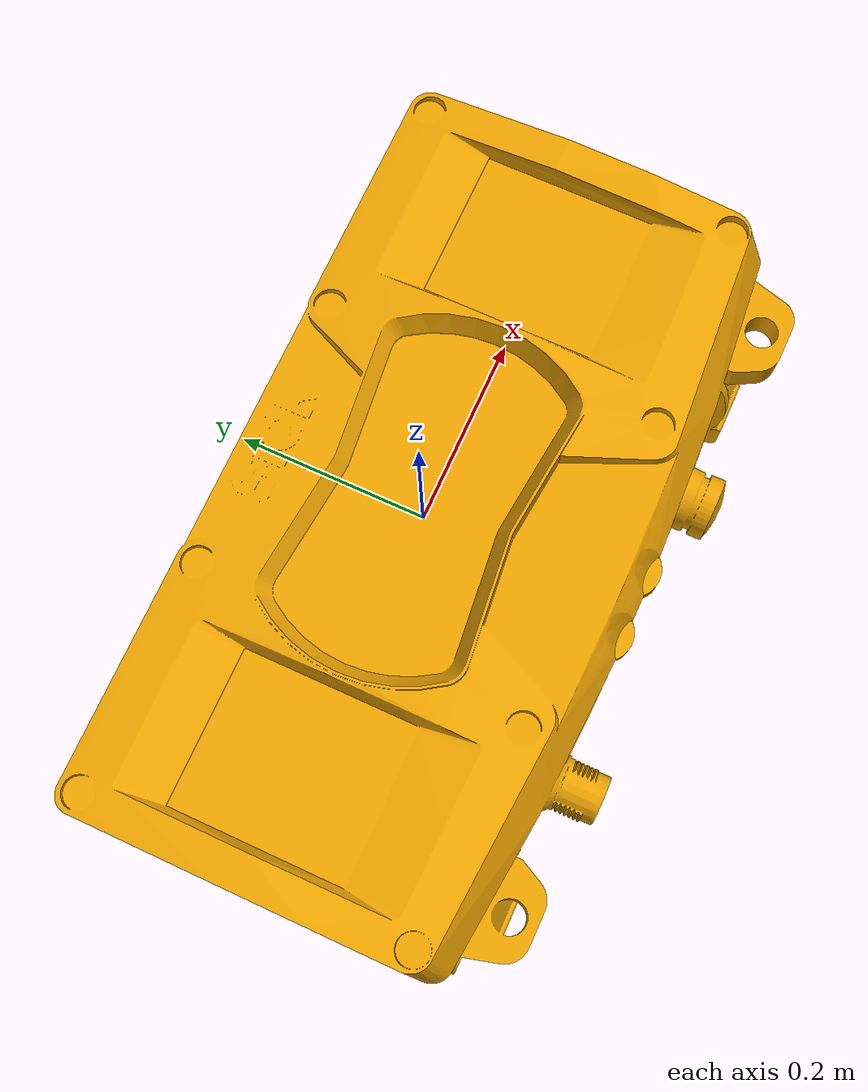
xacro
<?xml version="1.0"?>
<robot xmlns:xacro="http://ros.org/wiki/xacro" name="Visionary-S">
    <xacro:arg name="link_name" default=""/>
    <link name="$(arg link_name)">
        <visual>
            <geometry>
                <mesh filename="package://sick_publisher/meshes/visionary_s.dae" scale="0.005 0.005 0.005"/>
            </geometry>
        </visual>
    </link>
</robot>
